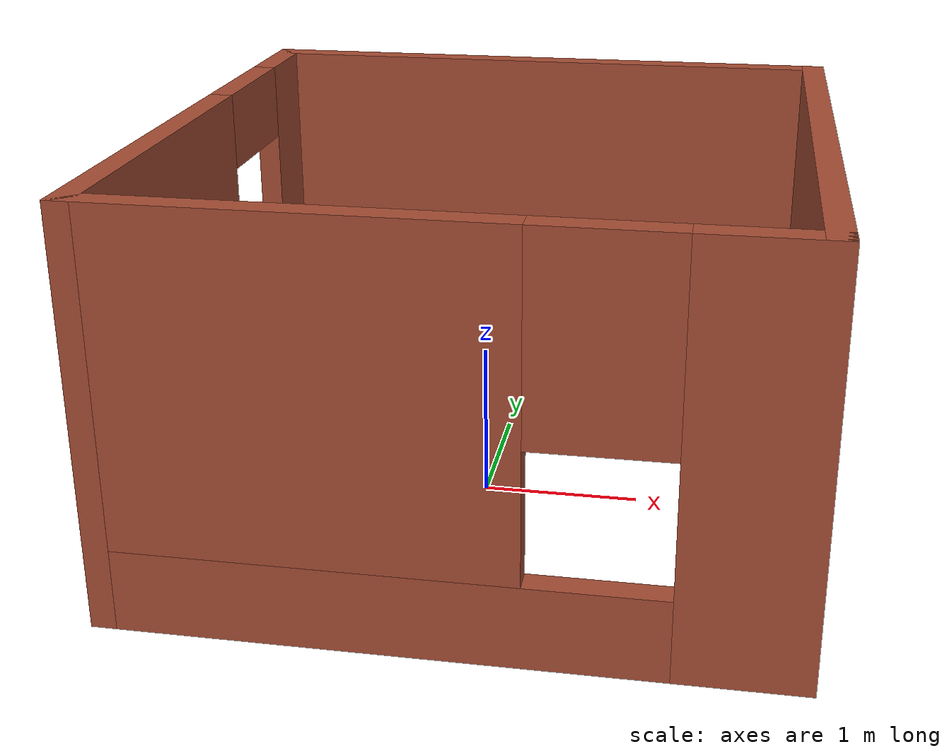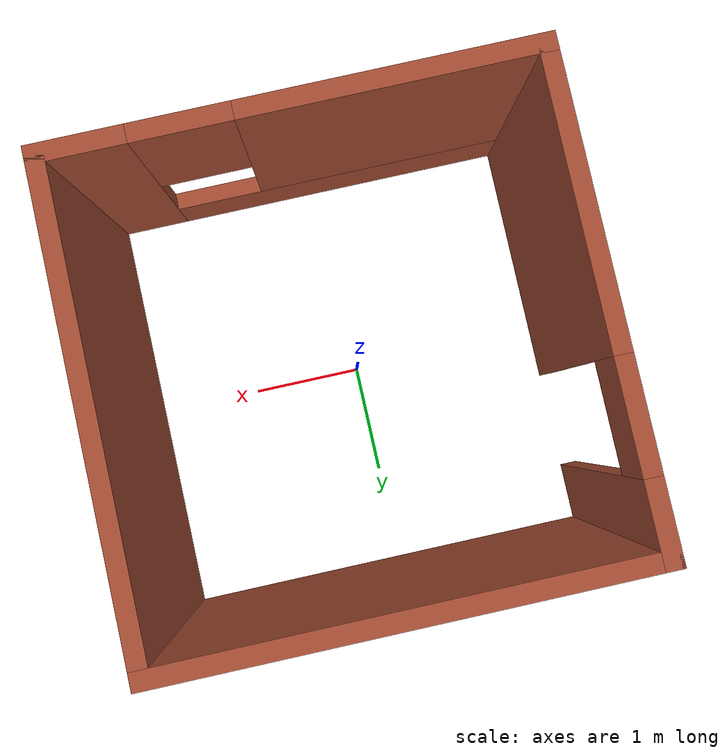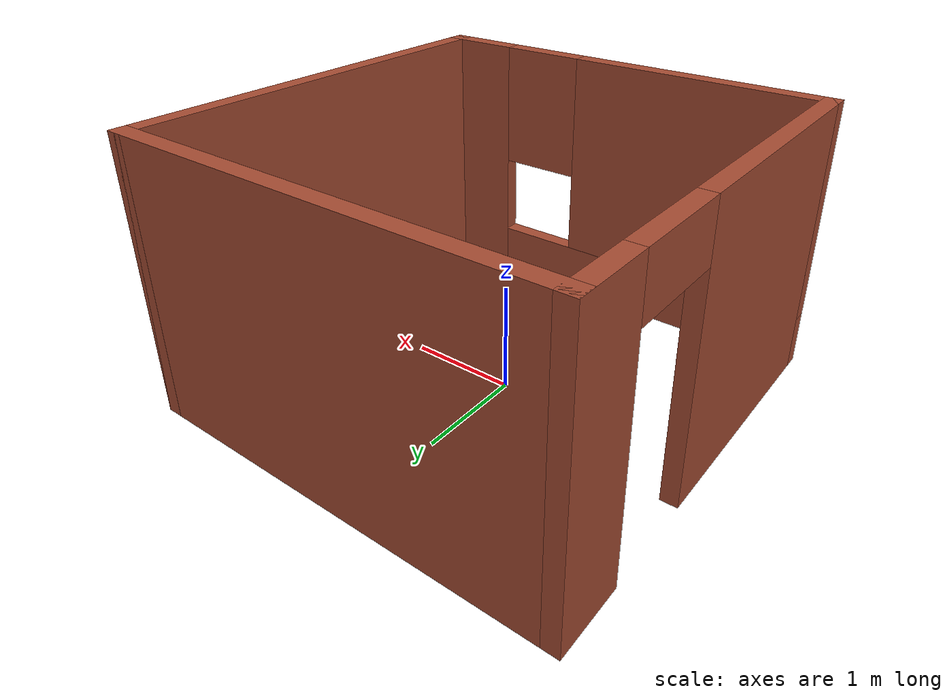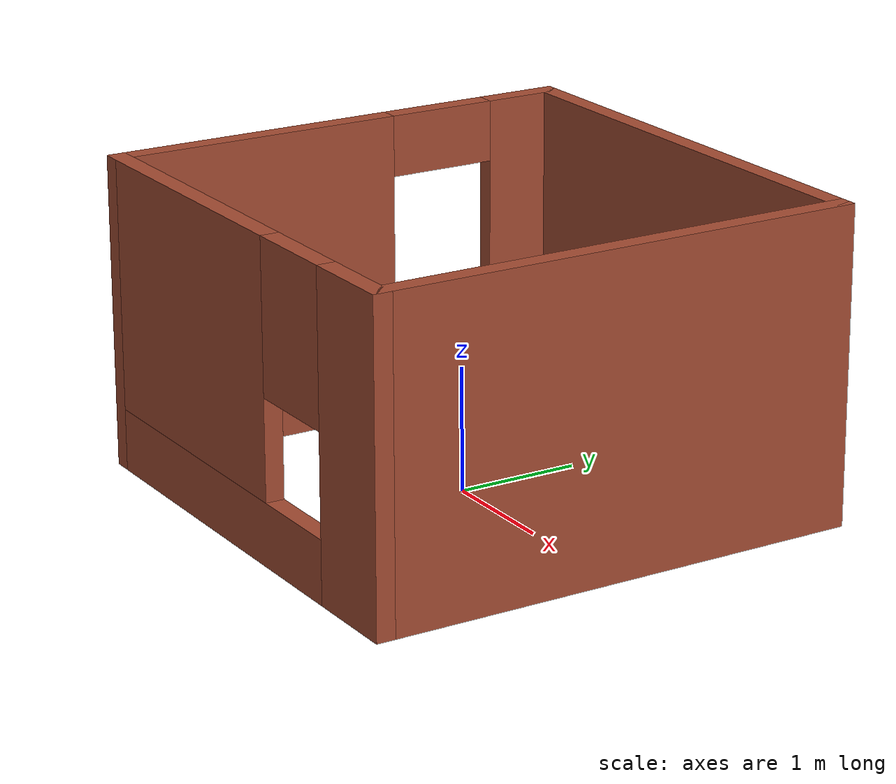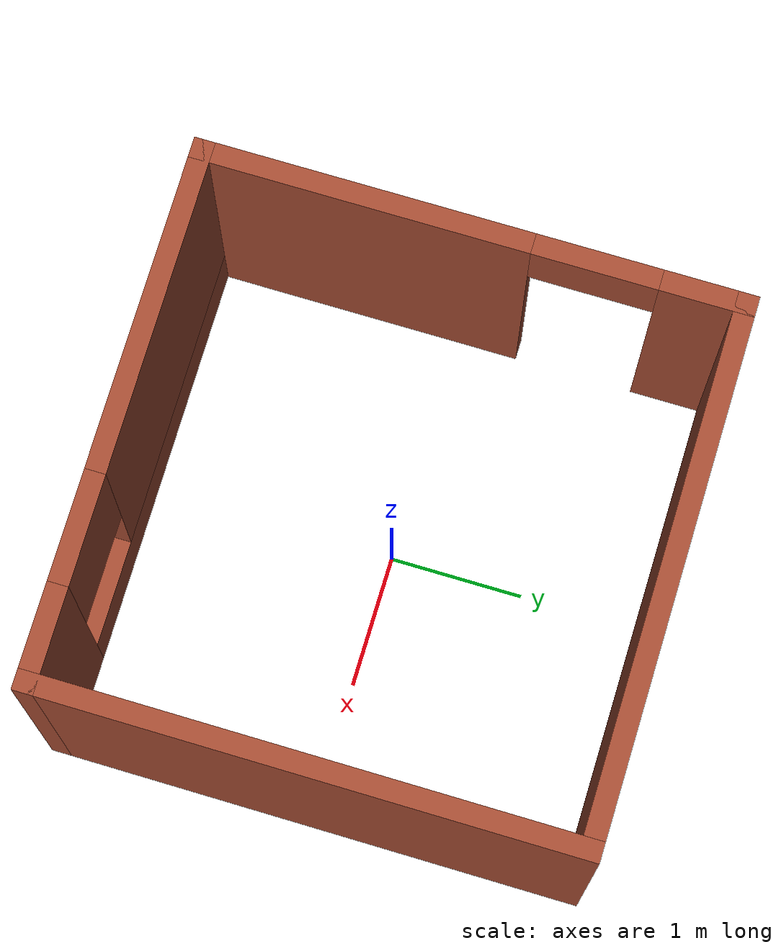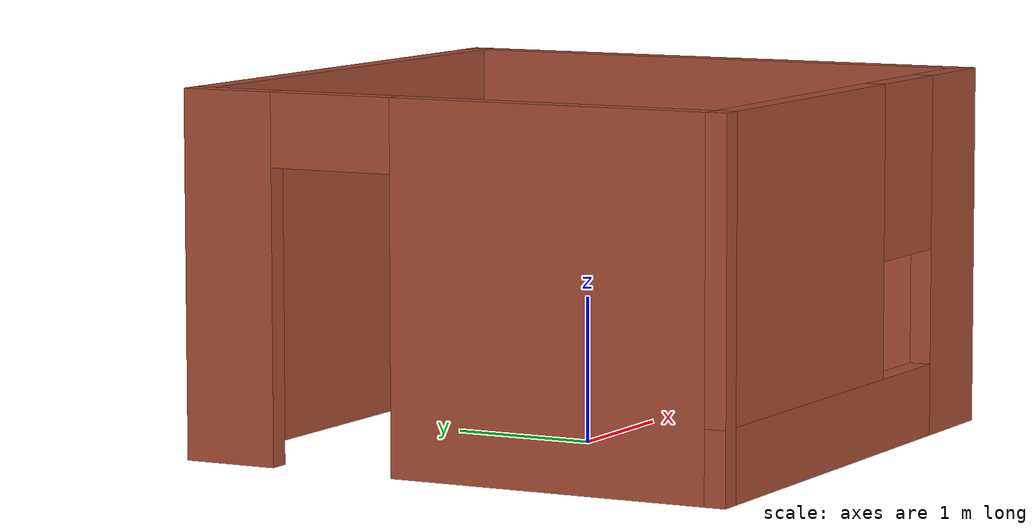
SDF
<?xml version='1.0'?>
<sdf version='1.6'>
  <model name='robot_room'>
    <pose frame=''>0.090425 0.023789 0 0 -0 0</pose>
    <link name='Wall_6'>
      <collision name='Wall_6_Collision'>
        <geometry>
          <box>
            <size>4 0.15 2.5</size>
          </box>
        </geometry>
        <pose frame=''>0 0 1.25 0 -0 0</pose>
      </collision>
      <visual name='Wall_6_Visual'>
        <pose frame=''>0 0 1.25 0 -0 0</pose>
        <geometry>
          <box>
            <size>4 0.15 2.5</size>
          </box>
        </geometry>
        <material>
          <script>
            <uri>file://media/materials/scripts/gazebo.material</uri>
            <name>Gazebo/Bricks</name>
          </script>
          <ambient>1 1 1 1</ambient>
        </material>
      </visual>
      <pose frame=''>1.925 0 0 0 0 -1.5708</pose>
    </link>
    <link name='Wall_7'>
      <pose frame=''>0 -1.925 0 0 -0 3.14159</pose>
      <visual name='Wall_7_Visual_0'>
        <pose frame=''>-1.61984 0 1.25 0 -0 0</pose>
        <geometry>
          <box>
            <size>0.760314 0.15 2.5</size>
          </box>
        </geometry>
        <material>
          <script>
            <uri>file://media/materials/scripts/gazebo.material</uri>
            <name>Gazebo/Bricks</name>
          </script>
          <ambient>1 1 1 1</ambient>
        </material>
      </visual>
      <collision name='Wall_7_Collision_0'>
        <geometry>
          <box>
            <size>0.760314 0.15 2.5</size>
          </box>
        </geometry>
        <pose frame=''>-1.61984 0 1.25 0 -0 0</pose>
      </collision>
      <visual name='Wall_7_Visual_1'>
        <pose frame=''>0.380157 0 0.25 0 -0 0</pose>
        <geometry>
          <box>
            <size>3.23969 0.15 0.5</size>
          </box>
        </geometry>
        <material>
          <script>
            <uri>file://media/materials/scripts/gazebo.material</uri>
            <name>Gazebo/Bricks</name>
          </script>
          <ambient>1 1 1 1</ambient>
        </material>
      </visual>
      <collision name='Wall_7_Collision_1'>
        <geometry>
          <box>
            <size>3.23969 0.15 0.5</size>
          </box>
        </geometry>
        <pose frame=''>0.380157 0 0.25 0 -0 0</pose>
      </collision>
      <visual name='Wall_7_Visual_2'>
        <pose frame=''>0.780157 0 1.5 0 -0 0</pose>
        <geometry>
          <box>
            <size>2.43969 0.15 2</size>
          </box>
        </geometry>
        <material>
          <script>
            <uri>file://media/materials/scripts/gazebo.material</uri>
            <name>Gazebo/Bricks</name>
          </script>
          <ambient>1 1 1 1</ambient>
        </material>
      </visual>
      <collision name='Wall_7_Collision_2'>
        <geometry>
          <box>
            <size>2.43969 0.15 2</size>
          </box>
        </geometry>
        <pose frame=''>0.780157 0 1.5 0 -0 0</pose>
      </collision>
      <visual name='Wall_7_Visual_3'>
        <pose frame=''>-0.839686 0 1.9 0 -0 0</pose>
        <geometry>
          <box>
            <size>0.8 0.15 1.2</size>
          </box>
        </geometry>
        <material>
          <script>
            <uri>file://media/materials/scripts/gazebo.material</uri>
            <name>Gazebo/Bricks</name>
          </script>
          <ambient>1 1 1 1</ambient>
        </material>
      </visual>
      <collision name='Wall_7_Collision_3'>
        <geometry>
          <box>
            <size>0.8 0.15 1.2</size>
          </box>
        </geometry>
        <pose frame=''>-0.839686 0 1.9 0 -0 0</pose>
      </collision>
    </link>
    <link name='Wall_8'>
      <pose frame=''>-1.925 0 0 0 -0 1.5708</pose>
      <visual name='Wall_8_Visual_0'>
        <pose frame=''>-0.785543 0 1.25 0 -0 0</pose>
        <geometry>
          <box>
            <size>2.42891 0.15 2.5</size>
          </box>
        </geometry>
        <material>
          <script>
            <uri>file://media/materials/scripts/gazebo.material</uri>
            <name>Gazebo/Bricks</name>
          </script>
          <ambient>1 1 1 1</ambient>
        </material>
      </visual>
      <collision name='Wall_8_Collision_0'>
        <geometry>
          <box>
            <size>2.42891 0.15 2.5</size>
          </box>
        </geometry>
        <pose frame=''>-0.785543 0 1.25 0 -0 0</pose>
      </collision>
      <visual name='Wall_8_Visual_1'>
        <pose frame=''>1.66446 0 1.25 0 -0 0</pose>
        <geometry>
          <box>
            <size>0.671086 0.15 2.5</size>
          </box>
        </geometry>
        <material>
          <script>
            <uri>file://media/materials/scripts/gazebo.material</uri>
            <name>Gazebo/Bricks</name>
          </script>
          <ambient>1 1 1 1</ambient>
        </material>
      </visual>
      <collision name='Wall_8_Collision_1'>
        <geometry>
          <box>
            <size>0.671086 0.15 2.5</size>
          </box>
        </geometry>
        <pose frame=''>1.66446 0 1.25 0 -0 0</pose>
      </collision>
      <visual name='Wall_8_Visual_2'>
        <pose frame=''>0.878914 0 2.25 0 -0 0</pose>
        <geometry>
          <box>
            <size>0.9 0.15 0.5</size>
          </box>
        </geometry>
        <material>
          <script>
            <uri>file://media/materials/scripts/gazebo.material</uri>
            <name>Gazebo/Bricks</name>
          </script>
          <ambient>1 1 1 1</ambient>
        </material>
      </visual>
      <collision name='Wall_8_Collision_2'>
        <geometry>
          <box>
            <size>0.9 0.15 0.5</size>
          </box>
        </geometry>
        <pose frame=''>0.878914 0 2.25 0 -0 0</pose>
      </collision>
    </link>
    <link name='Wall_9'>
      <collision name='Wall_9_Collision'>
        <geometry>
          <box>
            <size>4 0.15 2.5</size>
          </box>
        </geometry>
        <pose frame=''>0 0 1.25 0 -0 0</pose>
      </collision>
      <visual name='Wall_9_Visual'>
        <pose frame=''>0 0 1.25 0 -0 0</pose>
        <geometry>
          <box>
            <size>4 0.15 2.5</size>
          </box>
        </geometry>
        <material>
          <script>
            <uri>file://media/materials/scripts/gazebo.material</uri>
            <name>Gazebo/Bricks</name>
          </script>
          <ambient>1 1 1 1</ambient>
        </material>
      </visual>
      <pose frame=''>0 1.925 0 0 -0 0</pose>
    </link>
    <static>1</static>
  </model>
</sdf>
